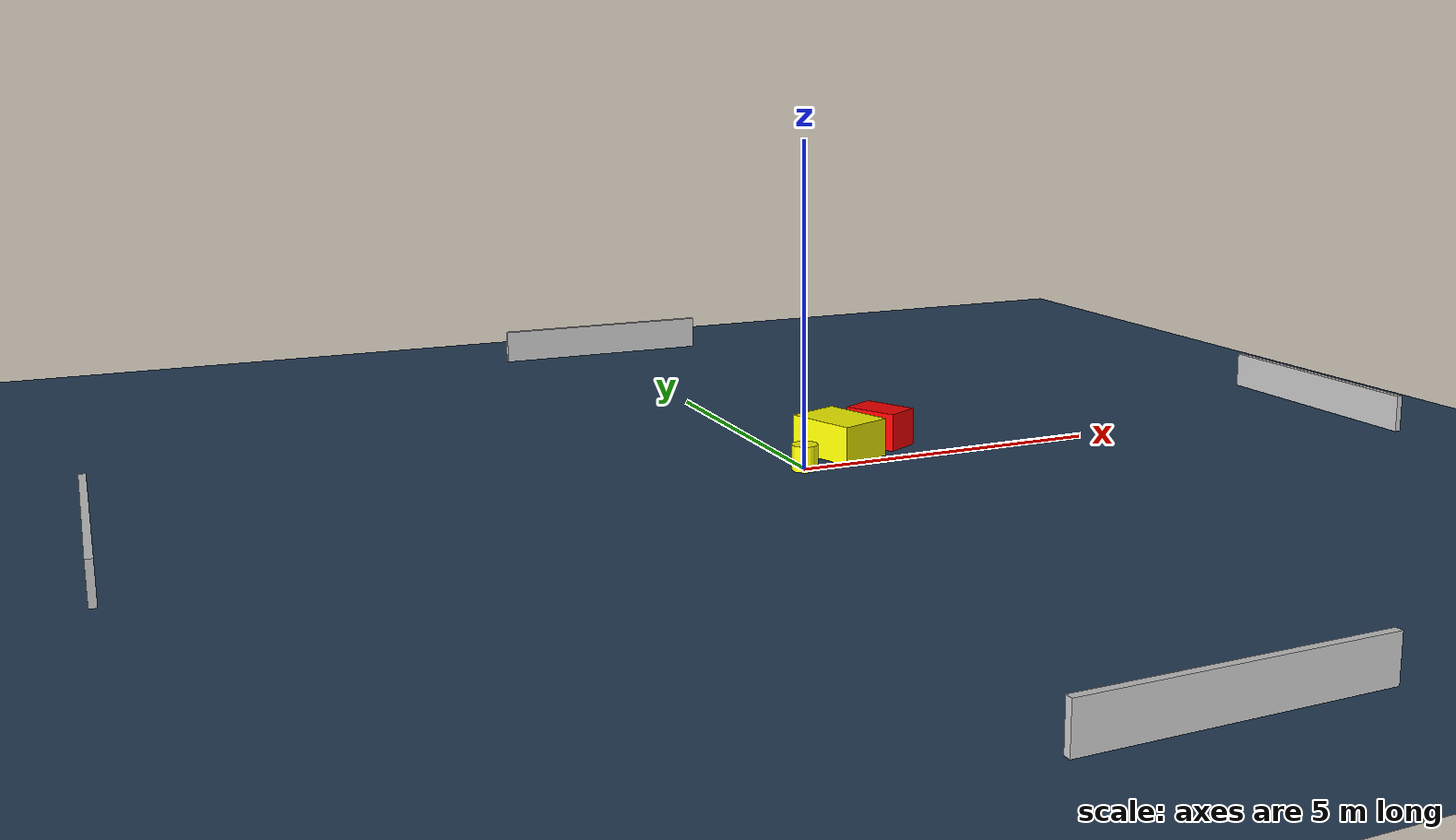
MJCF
<?xml version="1.0" ?>
<mujoco model="generated_environment">
  <option timestep="0.01" integrator="RK4" cone="elliptic"/>
  <default>
    <geom density="1"/>
  </default>
  <asset>
    <texture builtin="gradient" height="3072" name="skybox" rgb1="0.3 0.5 0.7" rgb2="0 0 0" type="skybox" width="512"/>
    <texture builtin="checker" height="300" name="groundplane" rgb1="0.2 0.3 0.4" rgb2="0.1 0.2 0.3" type="2d" width="300"/>
    <material name="groundplane" reflectance="0.2" texrepeat="5 5" texture="groundplane"/>
  </asset>
  <worldbody>
    <light dir="0 0 -1" directional="true" pos="0 0 1.5"/>
    <geom condim="3" friction="0.5 0.005 0.001" material="groundplane" name="floor" pos="0 0 0" size="0 0 0.05" type="plane"/>
    <body name="walls">
      <geom name="wall_1" condim="4" pos="-10.0 0.0 0.3" rgba="0.800000011920929 0.800000011920929 0.800000011920929 1.0" size="0.05 2.0 0.3" type="box"/>
      <geom name="wall_2" condim="4" pos="10.0 0.0 0.3" rgba="0.800000011920929 0.800000011920929 0.800000011920929 1.0" size="0.05 2.0 0.3" type="box"/>
      <geom name="wall_3" condim="4" pos="0.0 -10.0 0.3" rgba="0.800000011920929 0.800000011920929 0.800000011920929 1.0" size="2.0 0.05 0.3" type="box"/>
      <geom name="wall_4" condim="4" pos="0.0 10.0 0.3" rgba="0.800000011920929 0.800000011920929 0.800000011920929 1.0" size="2.0 0.05 0.3" type="box"/>
    </body>
    <body name="robot">
      <joint name="joint_x" type="slide" pos="0 0 0" axis="1 0 0"/>
      <joint name="joint_y" type="slide" pos="0 0 0" axis="0 1 0"/>
      <geom name="robot" type="cylinder" pos="0.0 0.0 0.2" size="0.2 0.2 0.0" mass="5.0" friction="1.0 0.005 0.0001" condim="4" rgba="1.0 1.0 0.0 1.0"/>
    </body>
    <body name="obstacle_1_movable">
      <geom name="obstacle_1_movable" condim="4" pos="0.8932124357831414 0.6322051973703549 0.3" euler="0 0 19.403846347062927" friction="0.0 0.005 0.001" rgba="1.0 1.0 0.0 1.0" size="0.432559866930786 0.5923973123474163 0.3" type="box" mass="0.1"/>
      <joint type="free"/>
    </body>
    <body name="obstacle_2_static">
      <geom name="obstacle_2_static" condim="4" pos="1.7678074098047163 0.9164342513980561 0.3" euler="0 0 117.59825126794759" friction="0.0 0.005 0.001" rgba="1.0 0.0 0.0 1.0" size="0.44696646308326904 0.2903655051421288 0.3" type="box"/>
    </body>
  </worldbody>
  <actuator>
    <motor name="actuator_x" joint="joint_x" gear="1" ctrlrange="-1 1"/>
    <motor name="actuator_y" joint="joint_y" gear="1" ctrlrange="-1 1"/>
  </actuator>
</mujoco>
